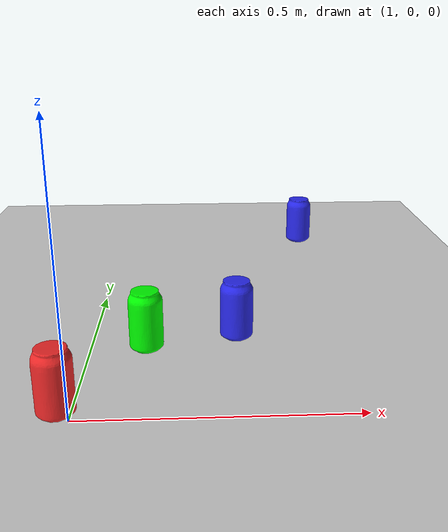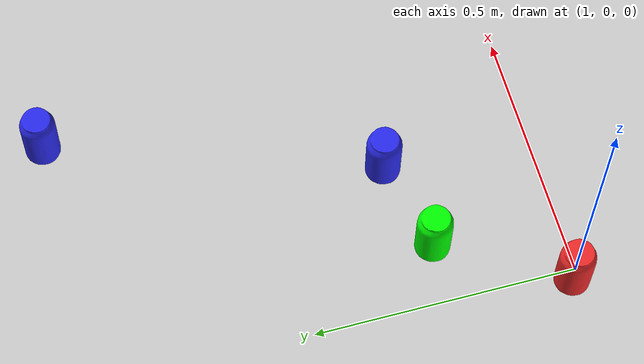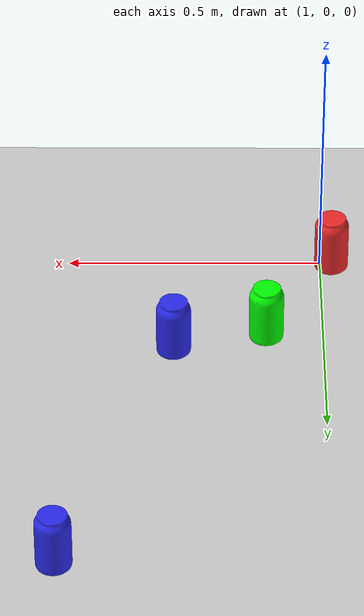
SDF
<?xml version="1.0" ?>
<sdf version="1.4">
  <!-- We use a custom world for the robo_arm so that the camera angle is launched correctly -->

  <world name="default">
    <scene>
      <shadows>0</shadows>
    </scene>
    <include>
      <uri>model://ground_plane</uri>
    </include>

    <!--Startof models -->
    <model name='red_can'>
      <link name='link'>
        <inertial>
          <pose>0 0 0.06 0 -0 0</pose>
          <mass>0.39</mass>
          <inertia>
            <ixx>0.00055575</ixx>
            <ixy>0</ixy>
            <ixz>0</ixz>
            <iyy>0.00055575</iyy>
            <iyz>0</iyz>
            <izz>0.0001755</izz>
          </inertia>
        </inertial>
        <self_collide>0</self_collide>
        <enable_wind>0</enable_wind>
        <kinematic>0</kinematic>
        <pose>0 0 0 0 -0 0</pose>
        <gravity>1</gravity>
        <visual name='visual'>
          <pose>0.003937 0.004724 -0.18 0 -0 0</pose>
          <geometry>
            <mesh>
              <uri>model://coke_can/meshes/coke_can.dae</uri>
            </mesh>
          </geometry>
          <material>
            <shader type='pixel'>
              <normal_map>__default__</normal_map>
            </shader>
            <script>
              <name>ModelPreview_1::link::visual_MATERIAL_</name>
              <uri>__default__</uri>
            </script>
            <ambient>0.937 0.161 0.161 1</ambient>
            <diffuse>0.937 0.161 0.161 1</diffuse>
            <specular>0.937 0.161 0.161 1</specular>
            <emissive>0.937 0.161 0.161 1</emissive>
          </material>
          <transparency>0</transparency>
          <cast_shadows>1</cast_shadows>
        </visual>
        <collision name='collision'>
          <laser_retro>0</laser_retro>
          <max_contacts>10</max_contacts>
          <pose>0.003937 0.004724 -0.18 0 -0 0</pose>
          <geometry>
            <mesh>
              <uri>model://coke_can/meshes/coke_can.dae</uri>
              <scale>1 1 1</scale>
            </mesh>
          </geometry>
          <surface>
            <friction>
              <ode>
                <mu>1</mu>
                <mu2>1</mu2>
                <fdir1>0 0 0</fdir1>
                <slip1>0</slip1>
                <slip2>0</slip2>
              </ode>
              <torsional>
                <coefficient>1</coefficient>
                <patch_radius>0</patch_radius>
                <surface_radius>0</surface_radius>
                <use_patch_radius>1</use_patch_radius>
                <ode>
                  <slip>0</slip>
                </ode>
              </torsional>
            </friction>
            <bounce>
              <restitution_coefficient>0</restitution_coefficient>
              <threshold>1e+06</threshold>
            </bounce>
            <contact>
              <collide_without_contact>0</collide_without_contact>
              <collide_without_contact_bitmask>1</collide_without_contact_bitmask>
              <collide_bitmask>1</collide_bitmask>
              <ode>
                <soft_cfm>0</soft_cfm>
                <soft_erp>0.2</soft_erp>
                <kp>1e+07</kp>
                <kd>1</kd>
                <max_vel>0.1</max_vel>
                <min_depth>0.001</min_depth>
              </ode>
              <bullet>
                <split_impulse>1</split_impulse>
                <split_impulse_penetration_threshold>-0.01</split_impulse_penetration_threshold>
                <soft_cfm>0</soft_cfm>
                <soft_erp>0.2</soft_erp>
                <kp>1e+07</kp>
                <kd>1</kd>
              </bullet>
            </contact>
          </surface>
        </collision>
      </link>
      <static>0</static>
      <allow_auto_disable>1</allow_auto_disable>
      <pose>0.978848 0.017248 0 0 -0 0</pose>
    </model>
    <model name='blue_can'>
      <link name='link'>
        <inertial>
          <pose>0 0 0.06 0 -0 0</pose>
          <mass>0.39</mass>
          <inertia>
            <ixx>0.00055575</ixx>
            <ixy>0</ixy>
            <ixz>0</ixz>
            <iyy>0.00055575</iyy>
            <iyz>0</iyz>
            <izz>0.0001755</izz>
          </inertia>
        </inertial>
        <self_collide>0</self_collide>
        <enable_wind>0</enable_wind>
        <kinematic>0</kinematic>
        <pose>0 0 0 0 -0 0</pose>
        <gravity>1</gravity>
        <visual name='visual'>
          <pose>0.003937 0.004724 -0.18 0 -0 0</pose>
          <geometry>
            <mesh>
              <uri>model://coke_can/meshes/coke_can.dae</uri>
            </mesh>
          </geometry>
          <material>
            <shader type='pixel'>
              <normal_map>__default__</normal_map>
            </shader>
            <script>
              <name>ModelPreview_1::link::visual_MATERIAL_</name>
              <uri>__default__</uri>
            </script>
            <ambient>0.161 0.161 0.937 1</ambient>
            <diffuse>0.161 0.161 0.937 1</diffuse>
            <specular>0.161 0.161 0.937 1</specular>
            <emissive>0.161 0.161 0.937 1</emissive>
          </material>
          <transparency>0</transparency>
          <cast_shadows>1</cast_shadows>
        </visual>
        <collision name='collision'>
          <laser_retro>0</laser_retro>
          <max_contacts>10</max_contacts>
          <pose>0.003937 0.004724 -0.18 0 -0 0</pose>
          <geometry>
            <mesh>
              <uri>model://coke_can/meshes/coke_can.dae</uri>
              <scale>1 1 1</scale>
            </mesh>
          </geometry>
          <surface>
            <friction>
              <ode>
                <mu>1</mu>
                <mu2>1</mu2>
                <fdir1>0 0 0</fdir1>
                <slip1>0</slip1>
                <slip2>0</slip2>
              </ode>
              <torsional>
                <coefficient>1</coefficient>
                <patch_radius>0</patch_radius>
                <surface_radius>0</surface_radius>
                <use_patch_radius>1</use_patch_radius>
                <ode>
                  <slip>0</slip>
                </ode>
              </torsional>
            </friction>
            <bounce>
              <restitution_coefficient>0</restitution_coefficient>
              <threshold>1e+06</threshold>
            </bounce>
            <contact>
              <collide_without_contact>0</collide_without_contact>
              <collide_without_contact_bitmask>1</collide_without_contact_bitmask>
              <collide_bitmask>1</collide_bitmask>
              <ode>
                <soft_cfm>0</soft_cfm>
                <soft_erp>0.2</soft_erp>
                <kp>1e+07</kp>
                <kd>1</kd>
                <max_vel>0.1</max_vel>
                <min_depth>0.001</min_depth>
              </ode>
              <bullet>
                <split_impulse>1</split_impulse>
                <split_impulse_penetration_threshold>-0.01</split_impulse_penetration_threshold>
                <soft_cfm>0</soft_cfm>
                <soft_erp>0.2</soft_erp>
                <kp>1e+07</kp>
                <kd>1</kd>
              </bullet>
            </contact>
          </surface>
        </collision>
      </link>
      <static>0</static>
      <allow_auto_disable>1</allow_auto_disable>
      <pose>1.29027 0.287542 0 0 -0 0</pose>
    </model>
    <model name='blue_can1'>
      <link name='link'>
        <inertial>
          <pose>0 0 0.06 0 -0 0</pose>
          <mass>0.39</mass>
          <inertia>
            <ixx>0.00055575</ixx>
            <ixy>0</ixy>
            <ixz>0</ixz>
            <iyy>0.00055575</iyy>
            <iyz>0</iyz>
            <izz>0.0001755</izz>
          </inertia>
        </inertial>
        <self_collide>0</self_collide>
        <enable_wind>0</enable_wind>
        <kinematic>0</kinematic>
        <pose>0 0 0 0 -0 0</pose>
        <gravity>1</gravity>
        <visual name='visual'>
          <pose>0.003937 0.004724 -0.18 0 -0 0</pose>
          <geometry>
            <mesh>
              <uri>model://coke_can/meshes/coke_can.dae</uri>
            </mesh>
          </geometry>
          <material>
            <shader type='pixel'>
              <normal_map>__default__</normal_map>
            </shader>
            <script>
              <name>ModelPreview_1::link::visual_MATERIAL_</name>
              <uri>__default__</uri>
            </script>
            <ambient>0.161 0.161 0.937 1</ambient>
            <diffuse>0.161 0.161 0.937 1</diffuse>
            <specular>0.161 0.161 0.937 1</specular>
            <emissive>0.161 0.161 0.937 1</emissive>
          </material>
          <transparency>0</transparency>
          <cast_shadows>1</cast_shadows>
        </visual>
        <collision name='collision'>
          <laser_retro>0</laser_retro>
          <max_contacts>10</max_contacts>
          <pose>0.003937 0.004724 -0.18 0 -0 0</pose>
          <geometry>
            <mesh>
              <uri>model://coke_can/meshes/coke_can.dae</uri>
              <scale>1 1 1</scale>
            </mesh>
          </geometry>
          <surface>
            <friction>
              <ode>
                <mu>1</mu>
                <mu2>1</mu2>
                <fdir1>0 0 0</fdir1>
                <slip1>0</slip1>
                <slip2>0</slip2>
              </ode>
              <torsional>
                <coefficient>1</coefficient>
                <patch_radius>0</patch_radius>
                <surface_radius>0</surface_radius>
                <use_patch_radius>1</use_patch_radius>
                <ode>
                  <slip>0</slip>
                </ode>
              </torsional>
            </friction>
            <bounce>
              <restitution_coefficient>0</restitution_coefficient>
              <threshold>1e+06</threshold>
            </bounce>
            <contact>
              <collide_without_contact>0</collide_without_contact>
              <collide_without_contact_bitmask>1</collide_without_contact_bitmask>
              <collide_bitmask>1</collide_bitmask>
              <ode>
                <soft_cfm>0</soft_cfm>
                <soft_erp>0.2</soft_erp>
                <kp>1e+07</kp>
                <kd>1</kd>
                <max_vel>0.1</max_vel>
                <min_depth>0.001</min_depth>
              </ode>
              <bullet>
                <split_impulse>1</split_impulse>
                <split_impulse_penetration_threshold>-0.01</split_impulse_penetration_threshold>
                <soft_cfm>0</soft_cfm>
                <soft_erp>0.2</soft_erp>
                <kp>1e+07</kp>
                <kd>1</kd>
              </bullet>
            </contact>
          </surface>
        </collision>
      </link>
      <static>0</static>
      <allow_auto_disable>1</allow_auto_disable>
      <pose>1.5 0.9 0 0 -0 0</pose>
    </model>
    <model name='green_can'>
      <link name='link'>
        <inertial>
          <pose>0 0 0.06 0 -0 0</pose>
          <mass>0.39</mass>
          <inertia>
            <ixx>0.00055575</ixx>
            <ixy>0</ixy>
            <ixz>0</ixz>
            <iyy>0.00055575</iyy>
            <iyz>0</iyz>
            <izz>0.0001755</izz>
          </inertia>
        </inertial>
        <self_collide>0</self_collide>
        <enable_wind>0</enable_wind>
        <kinematic>0</kinematic>
        <pose>0 0 0 0 -0 0</pose>
        <gravity>1</gravity>
        <visual name='visual'>
          <pose>0.003937 0.004724 -0.18 0 -0 0</pose>
          <geometry>
            <mesh>
              <uri>model://coke_can/meshes/coke_can.dae</uri>
            </mesh>
          </geometry>
          <material>
            <shader type='pixel'>
              <normal_map>__default__</normal_map>
            </shader>
            <script>
              <name>ModelPreview_1::link::visual_MATERIAL_</name>
              <uri>__default__</uri>
            </script>
            <ambient>0 1 0 1</ambient>
            <diffuse>0 1 0 1</diffuse>
            <specular>0 1 0 1</specular>
            <emissive>0 1 0 1</emissive>
          </material>
          <transparency>0</transparency>
          <cast_shadows>1</cast_shadows>
        </visual>
        <collision name='collision'>
          <laser_retro>0</laser_retro>
          <max_contacts>10</max_contacts>
          <pose>0.003937 0.004724 -0.18 0 -0 0</pose>
          <geometry>
            <mesh>
              <uri>model://coke_can/meshes/coke_can.dae</uri>
              <scale>1 1 1</scale>
            </mesh>
          </geometry>
          <surface>
            <friction>
              <ode>
                <mu>1</mu>
                <mu2>1</mu2>
                <fdir1>0 0 0</fdir1>
                <slip1>0</slip1>
                <slip2>0</slip2>
              </ode>
              <torsional>
                <coefficient>1</coefficient>
                <patch_radius>0</patch_radius>
                <surface_radius>0</surface_radius>
                <use_patch_radius>1</use_patch_radius>
                <ode>
                  <slip>0</slip>
                </ode>
              </torsional>
            </friction>
            <bounce>
              <restitution_coefficient>0</restitution_coefficient>
              <threshold>1e+06</threshold>
            </bounce>
            <contact>
              <collide_without_contact>0</collide_without_contact>
              <collide_without_contact_bitmask>1</collide_without_contact_bitmask>
              <collide_bitmask>1</collide_bitmask>
              <ode>
                <soft_cfm>0</soft_cfm>
                <soft_erp>0.2</soft_erp>
                <kp>1e+07</kp>
                <kd>1</kd>
                <max_vel>0.1</max_vel>
                <min_depth>0.001</min_depth>
              </ode>
              <bullet>
                <split_impulse>1</split_impulse>
                <split_impulse_penetration_threshold>-0.01</split_impulse_penetration_threshold>
                <soft_cfm>0</soft_cfm>
                <soft_erp>0.2</soft_erp>
                <kp>1e+07</kp>
                <kd>1</kd>
              </bullet>
            </contact>
          </surface>
        </collision>
      </link>
      <static>0</static>
      <allow_auto_disable>1</allow_auto_disable>
      <pose>1.11143 0.24416 0 0 -0 0</pose>
    </model>

    <!--End of models -->
    <!-- Global light source -->
    <include>
      <uri>model://sun</uri>
    </include>

    <!-- Focus camera on tall pendulum -->
    <gui fullscreen='0'>
      <camera name='user_camera'>
        <pose>4.927360 -4.376610 3.740080 0.000000 0.275643 2.356190</pose>
        <view_controller>orbit</view_controller>
      </camera>
    </gui>

  </world>
</sdf>
